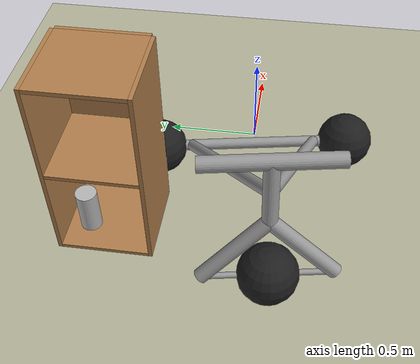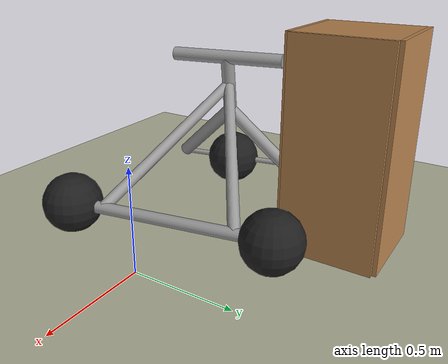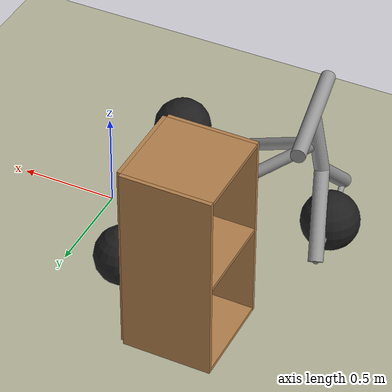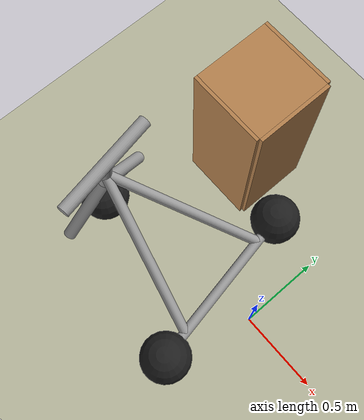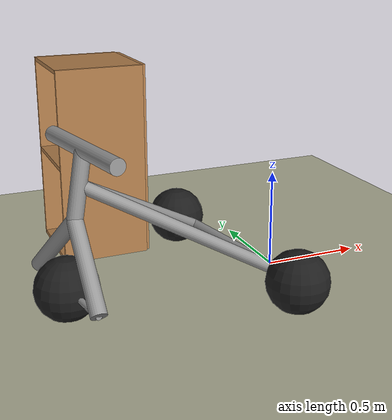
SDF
<sdf version="1.7">
 <world name="default">
  <model name="ground_plane_residential">
   <static>1</static>
   <link name="link">
    <collision name="collision">
     <geometry><plane><normal>0 0 1</normal><size>100 100</size></plane></geometry>
     <surface><friction><ode><mu>100</mu><mu2>50</mu2></ode></friction></surface>
    </collision>
    <visual name="visual">
     <cast_shadows>0</cast_shadows>
     <geometry><plane><normal>0 0 1</normal><size>100 100</size></plane></geometry>
     <material>
      <script><uri>file://media/materials/scripts/gazebo.material</uri><name>Gazebo/Residential</name></script>
     </material>
    </visual>
   </link>
  </model>
  <light name="sun" type="directional">
   <pose>0 0 10 0 -0 0</pose>
   <diffuse>0.8 0.8 0.8 1</diffuse>
   <specular>0.2 0.2 0.2 1</specular>
   <attenuation>
    <range>1000</range>
    <constant>0.9</constant>
    <linear>0.01</linear>
    <quadratic>0.001</quadratic>
   </attenuation>
   <direction>-0.5 0.1 -0.9</direction>
   <spot><inner_angle>0</inner_angle><outer_angle>0</outer_angle><falloff>0</falloff></spot>
  </light>
  <plugin name="ros_interface_plugin" filename="librotors_gazebo_ros_interface_plugin.so"/>
  <spherical_coordinates>
   <surface_model>EARTH_WGS84</surface_model>
   <latitude_deg>47.3667</latitude_deg>
   <longitude_deg>8.55</longitude_deg>
   <elevation>500</elevation>
   <heading_deg>0</heading_deg>
  </spherical_coordinates>
  <physics type="ode">
   <ode>
    <solver>
     <type>quick</type>
     <iters>1000</iters>
     <sor>1.3</sor>
     <use_dynamic_moi_rescaling>0</use_dynamic_moi_rescaling>
    </solver>
    <constraints>
     <cfm>0</cfm>
     <erp>0.2</erp>
     <contact_max_correcting_vel>100</contact_max_correcting_vel>
     <contact_surface_layer>0.001</contact_surface_layer>
    </constraints>
   </ode>
   <max_step_size>0.01</max_step_size>
   <real_time_factor>1</real_time_factor>
   <real_time_update_rate>100</real_time_update_rate>
  </physics>
  <gravity>0 0 -9.8</gravity>
  <magnetic_field>6e-06 2.3e-05 -4.2e-05</magnetic_field>
  <atmosphere type="adiabatic"/>
  <scene><ambient>0.4 0.4 0.4 1</ambient><background>0.7 0.7 0.7 1</background><shadows>1</shadows></scene>
  <model name="cabinet">
   <static>1</static>
   <link name="cabinet_bottom_plate">
    <inertial>
     <pose>0 0 -1 0 -0 0</pose>
     <inertia><ixx>2.05</ixx><ixy>0</ixy><ixz>0</ixz><iyy>2.05</iyy><iyz>0</iyz><izz>2.05</izz></inertia>
     <mass>25</mass>
    </inertial>
    <collision name="cabinet_bottom_plate_geom">
     <pose>0 0 0.01 0 -0 0</pose>
     <geometry><box><size>0.45 0.45 0.02</size></box></geometry>
    </collision>
    <visual name="cabinet_bottom_plate_geom_visual">
     <pose>0 0 0.01 0 -0 0</pose>
     <geometry><box><size>0.45 0.45 0.02</size></box></geometry>
     <material>
      <script><uri>file://media/materials/scripts/gazebo.material</uri><name>Gazebo/Wood</name></script>
     </material>
    </visual>
    <collision name="cabinet_bottom_plate_geom_cabinet_back_plate">
     <pose>0.235 0 0.51 0 -0 0</pose>
     <geometry><box><size>0.02 0.45 1.02</size></box></geometry>
    </collision>
    <visual name="cabinet_bottom_plate_geom_cabinet_back_plate_visual">
     <pose>0.235 0 0.51 0 -0 0</pose>
     <geometry><box><size>0.02 0.45 1.02</size></box></geometry>
     <material>
      <script><uri>file://media/materials/scripts/gazebo.material</uri><name>Gazebo/Wood</name></script>
     </material>
    </visual>
    <collision name="cabinet_bottom_plate_geom_cabinet_left_plate">
     <pose>0 0.235 0.51 0 -0 0</pose>
     <geometry><box><size>0.45 0.02 1.02</size></box></geometry>
    </collision>
    <visual name="cabinet_bottom_plate_geom_cabinet_left_plate_visual">
     <pose>0 0.235 0.51 0 -0 0</pose>
     <geometry><box><size>0.45 0.02 1.02</size></box></geometry>
     <material>
      <script><uri>file://media/materials/scripts/gazebo.material</uri><name>Gazebo/Wood</name></script>
     </material>
    </visual>
    <collision name="cabinet_bottom_plate_geom_cabinet_middle_plate">
     <pose>0 0 0.51 0 -0 0</pose>
     <geometry><box><size>0.45 0.45 0.02</size></box></geometry>
    </collision>
    <visual name="cabinet_bottom_plate_geom_cabinet_middle_plate_visual">
     <pose>0 0 0.51 0 -0 0</pose>
     <geometry><box><size>0.45 0.45 0.02</size></box></geometry>
     <material>
      <script><uri>file://media/materials/scripts/gazebo.material</uri><name>Gazebo/Wood</name></script>
     </material>
    </visual>
    <collision name="cabinet_bottom_plate_geom_cabinet_right_plate">
     <pose>0 -0.235 0.51 0 -0 0</pose>
     <geometry><box><size>0.45 0.02 1.02</size></box></geometry>
    </collision>
    <visual name="cabinet_bottom_plate_geom_cabinet_right_plate_visual">
     <pose>0 -0.235 0.51 0 -0 0</pose>
     <geometry><box><size>0.45 0.02 1.02</size></box></geometry>
     <material>
      <script><uri>file://media/materials/scripts/gazebo.material</uri><name>Gazebo/Wood</name></script>
     </material>
    </visual>
    <collision name="cabinet_bottom_plate_geom_cabinet_top_plate">
     <pose>0 0 1.01 0 -0 0</pose>
     <geometry><box><size>0.45 0.45 0.02</size></box></geometry>
    </collision>
    <visual name="cabinet_bottom_plate_geom_cabinet_top_plate_visual">
     <pose>0 0 1.01 0 -0 0</pose>
     <geometry><box><size>0.45 0.45 0.02</size></box></geometry>
     <material>
      <script><uri>file://media/materials/scripts/gazebo.material</uri><name>Gazebo/Wood</name></script>
     </material>
    </visual>
   </link>
   <pose>-0.762925 0.66259 0 0 -0 0</pose>
  </model>
  <model name="beer">
   <link name="link">
    <pose>0 0 0.115 0 -0 0</pose>
    <inertial>
     <mass>0.39</mass>
     <inertia><ixx>0.00058</ixx><ixy>0</ixy><ixz>0</ixz><iyy>0.00058</iyy><iyz>0</iyz><izz>0.00019</izz></inertia>
    </inertial>
    <collision name="collision">
     <geometry><cylinder><radius>0.055</radius><length>0.23</length></cylinder></geometry>
    </collision>
    <visual name="visual">
     <geometry><cylinder><radius>0.055</radius><length>0.23</length></cylinder></geometry>
     <material>
      <script>
       <uri>model://beer/materials/scripts</uri>
       <uri>model://beer/materials/textures</uri>
       <name>Beer/Diffuse</name>
      </script>
     </material>
    </visual>
   </link>
   <pose>-0.826224 0.774454 0.019859 -0.001297 -0.002229 -0.701404</pose>
  </model>
  <model name="trisphere_cycle">
   <link name="frame">
    <pose>-0.408559 0 0.385023 0 -0.522021 0</pose>
    <inertial>
     <mass>10</mass>
     <inertia><ixx>0.228</ixx><iyy>0.743521</iyy><izz>0.965521</izz><ixy>0</ixy><ixz>0</ixz><iyz>0</iyz></inertia>
    </inertial>
    <collision name="axle_collision">
     <pose>-0.471335 0 0 1.5708 -0 0</pose>
     <geometry><cylinder><length>1.03923</length><radius>0.03</radius></cylinder></geometry>
    </collision>
    <visual name="axle_visual">
     <pose>-0.471335 0 0 1.5708 -0 0</pose>
     <geometry><cylinder><length>1.03923</length><radius>0.03</radius></cylinder></geometry>
     <material>
      <script><uri>file://media/materials/scripts/gazebo.material</uri><name>Gazebo/Grey</name></script>
     </material>
    </visual>
    <collision name="frame_left_collision">
     <pose>0 0.171552 0 -2.79253 1.57079 3.14159</pose>
     <geometry><cylinder><length>1.00317</length><radius>0.03</radius></cylinder></geometry>
    </collision>
    <visual name="frame_left_visual">
     <pose>0 0.171552 0 -2.79253 1.57079 3.14159</pose>
     <geometry><cylinder><length>1.00317</length><radius>0.03</radius></cylinder></geometry>
     <material>
      <script><uri>file://media/materials/scripts/gazebo.material</uri><name>Gazebo/Grey</name></script>
     </material>
    </visual>
    <collision name="frame_right_collision">
     <pose>0 -0.171552 0 2.79253 1.57079 -3.14159</pose>
     <geometry><cylinder><length>1.00317</length><radius>0.03</radius></cylinder></geometry>
    </collision>
    <visual name="frame_right_visual">
     <pose>0 -0.171552 0 2.79253 1.57079 -3.14159</pose>
     <geometry><cylinder><length>1.00317</length><radius>0.03</radius></cylinder></geometry>
     <material>
      <script><uri>file://media/materials/scripts/gazebo.material</uri><name>Gazebo/Grey</name></script>
     </material>
    </visual>
   </link>
   <link name="fork">
    <pose>0.041441 0 0.385023 0 -0.174533 0</pose>
    <inertial>
     <mass>3</mass>
     <inertia>
      <ixx>0.158203</ixx>
      <iyy>0.0583594</iyy>
      <izz>0.102656</izz>
      <ixy>0</ixy>
      <ixz>0</ixz>
      <iyz>0</iyz>
     </inertia>
    </inertial>
    <collision name="handlebars_collision">
     <pose>0 0 0.397748 1.5708 -0 0</pose>
     <geometry><cylinder><length>0.636396</length><radius>0.0375</radius></cylinder></geometry>
    </collision>
    <visual name="handlebars_visual">
     <pose>0 0 0.397748 1.5708 -0 0</pose>
     <geometry><cylinder><length>0.636396</length><radius>0.0375</radius></cylinder></geometry>
     <material>
      <script><uri>file://media/materials/scripts/gazebo.material</uri><name>Gazebo/Grey</name></script>
     </material>
    </visual>
    <collision name="headtube_collision">
     <pose>0 0 0.238649 0 -0 0</pose>
     <geometry><cylinder><length>0.318198</length><radius>0.0375</radius></cylinder></geometry>
    </collision>
    <visual name="headtube_visual">
     <pose>0 0 0.238649 0 -0 0</pose>
     <geometry><cylinder><length>0.318198</length><radius>0.0375</radius></cylinder></geometry>
     <material>
      <script><uri>file://media/materials/scripts/gazebo.material</uri><name>Gazebo/Grey</name></script>
     </material>
    </visual>
    <collision name="spindle_collision">
     <pose>0 0 -0.238649 1.5708 -0 0</pose>
     <geometry><cylinder><length>0.636396</length><radius>0.015</radius></cylinder></geometry>
    </collision>
    <visual name="spindle_visual">
     <pose>0 0 -0.238649 1.5708 -0 0</pose>
     <geometry><cylinder><length>0.636396</length><radius>0.015</radius></cylinder></geometry>
     <material>
      <script><uri>file://media/materials/scripts/gazebo.material</uri><name>Gazebo/Grey</name></script>
     </material>
    </visual>
    <collision name="fork_left_collision">
     <pose>0 0.159099 -0.07955 0.785398 -0 0</pose>
     <geometry><cylinder><length>0.45</length><radius>0.0375</radius></cylinder></geometry>
    </collision>
    <visual name="fork_left_visual">
     <pose>0 0.159099 -0.07955 0.785398 -0 0</pose>
     <geometry><cylinder><length>0.45</length><radius>0.0375</radius></cylinder></geometry>
     <material>
      <script><uri>file://media/materials/scripts/gazebo.material</uri><name>Gazebo/Grey</name></script>
     </material>
    </visual>
    <collision name="fork_right_collision">
     <pose>0 -0.159099 -0.07955 -0.785398 0 0</pose>
     <geometry><cylinder><length>0.45</length><radius>0.0375</radius></cylinder></geometry>
    </collision>
    <visual name="fork_right_visual">
     <pose>0 -0.159099 -0.07955 -0.785398 0 0</pose>
     <geometry><cylinder><length>0.45</length><radius>0.0375</radius></cylinder></geometry>
     <material>
      <script><uri>file://media/materials/scripts/gazebo.material</uri><name>Gazebo/Grey</name></script>
     </material>
    </visual>
   </link>
   <link name="wheel_front">
    <pose>0.082882 0 0.15 0 -0 0</pose>
    <inertial>
     <mass>0.5</mass>
     <inertia><ixx>0.0045</ixx><iyy>0.0045</iyy><izz>0.0045</izz><ixy>0</ixy><ixz>0</ixz><iyz>0</iyz></inertia>
    </inertial>
    <collision name="collision">
     <geometry><sphere><radius>0.15</radius></sphere></geometry>
     <surface><contact><ode><kp>1e+08</kp><kd>1</kd><min_depth>0.0005</min_depth></ode></contact></surface>
    </collision>
    <visual name="visual">
     <geometry><sphere><radius>0.15</radius></sphere></geometry>
     <material>
      <script><uri>file://media/materials/scripts/gazebo.material</uri><name>Gazebo/Black</name></script>
     </material>
    </visual>
   </link>
   <joint name="wheel_front_steer" type="revolute">
    <parent>frame</parent>
    <child>fork</child>
    <axis>
     <xyz>0 0 1</xyz>
     <limit><lower>-0.959931</lower><upper>0.959931</upper></limit>
     <dynamics><spring_reference>0</spring_reference><spring_stiffness>0</spring_stiffness></dynamics>
    </axis>
   </joint>
   <joint name="wheel_front_spin" type="revolute">
    <parent>fork</parent>
    <child>wheel_front</child>
    <axis>
     <xyz>0 1 0</xyz>
     <limit><lower>-1e+16</lower><upper>1e+16</upper></limit>
     <dynamics><spring_reference>0</spring_reference><spring_stiffness>0</spring_stiffness></dynamics>
    </axis>
   </joint>
   <link name="wheel_rear_left">
    <pose>-0.817118 0.519615 0.15 0 -0 0</pose>
    <inertial>
     <mass>0.5</mass>
     <inertia><ixx>0.0045</ixx><iyy>0.0045</iyy><izz>0.0045</izz><ixy>0</ixy><ixz>0</ixz><iyz>0</iyz></inertia>
    </inertial>
    <collision name="collision">
     <geometry><sphere><radius>0.15</radius></sphere></geometry>
     <surface><contact><ode><kp>1e+08</kp><kd>1</kd><min_depth>0.0005</min_depth></ode></contact></surface>
    </collision>
    <visual name="visual">
     <geometry><sphere><radius>0.15</radius></sphere></geometry>
     <material>
      <script><uri>file://media/materials/scripts/gazebo.material</uri><name>Gazebo/Black</name></script>
     </material>
    </visual>
   </link>
   <joint name="wheel_rear_left_spin" type="revolute">
    <parent>frame</parent>
    <child>wheel_rear_left</child>
    <axis>
     <xyz>0 1 0</xyz>
     <limit><lower>-1e+16</lower><upper>1e+16</upper></limit>
     <dynamics><spring_reference>0</spring_reference><spring_stiffness>0</spring_stiffness></dynamics>
    </axis>
   </joint>
   <link name="wheel_rear_right">
    <pose>-0.817118 -0.519615 0.15 0 -0 0</pose>
    <inertial>
     <mass>0.5</mass>
     <inertia><ixx>0.0045</ixx><iyy>0.0045</iyy><izz>0.0045</izz><ixy>0</ixy><ixz>0</ixz><iyz>0</iyz></inertia>
    </inertial>
    <collision name="collision">
     <geometry><sphere><radius>0.15</radius></sphere></geometry>
     <surface><contact><ode><kp>1e+08</kp><kd>1</kd><min_depth>0.0005</min_depth></ode></contact></surface>
    </collision>
    <visual name="visual">
     <geometry><sphere><radius>0.15</radius></sphere></geometry>
     <material>
      <script><uri>file://media/materials/scripts/gazebo.material</uri><name>Gazebo/Black</name></script>
     </material>
    </visual>
   </link>
   <joint name="wheel_rear_right_spin" type="revolute">
    <parent>frame</parent>
    <child>wheel_rear_right</child>
    <axis>
     <xyz>0 1 0</xyz>
     <limit><lower>-1e+16</lower><upper>1e+16</upper></limit>
     <dynamics><spring_reference>0</spring_reference><spring_stiffness>0</spring_stiffness></dynamics>
    </axis>
   </joint>
   <pose>-1.03905 -0.160489 -0.000501 0 1e-06 -2.95671</pose>
  </model>
 </world>
</sdf>
